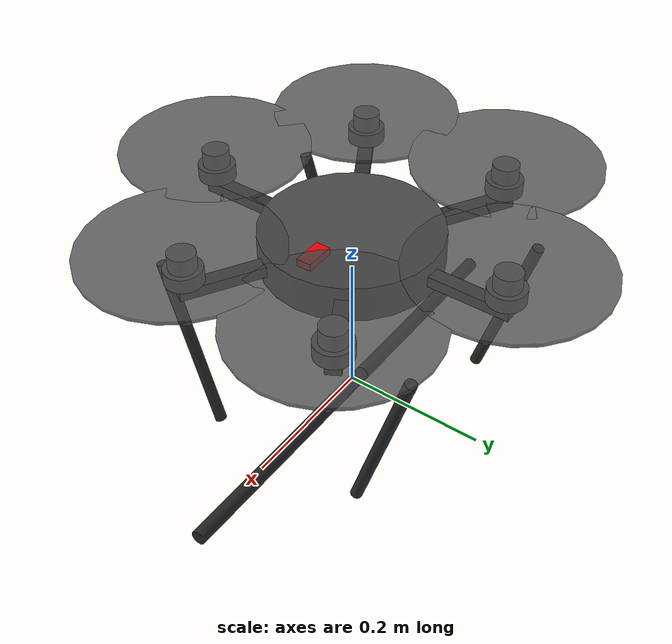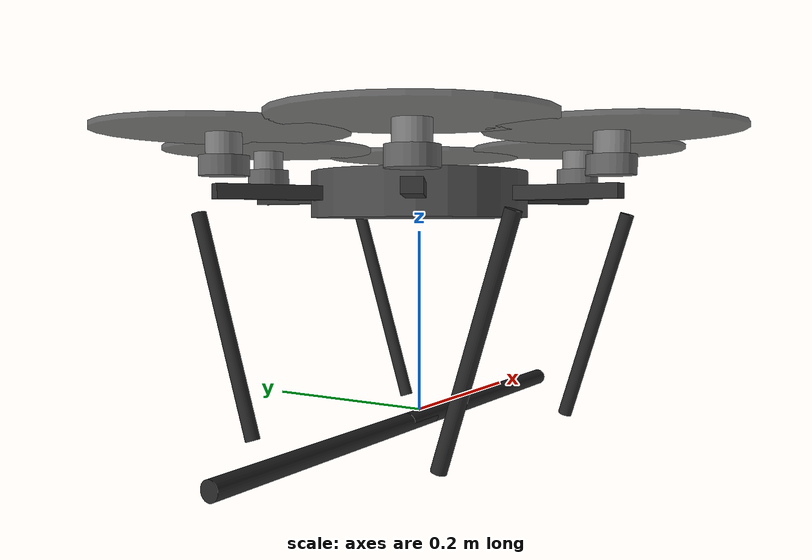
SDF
<?xml version="1.0" encoding="UTF-8"?>
<sdf version='1.9'>
  <model name='h600_base'>
    <pose>0 0 .24 0 0 0</pose>
    <self_collide>false</self_collide>
    <static>false</static>
    <link name="base_link">
      <inertial>
        <mass>2.5</mass>
        <inertia>
          <ixx>0.035</ixx>
          <ixy>0</ixy>
          <ixz>0</ixz>
          <iyy>0.035</iyy>
          <iyz>0</iyz>
          <izz>0.06</izz>
        </inertia>
      </inertial>
      <gravity>true</gravity>
      <velocity_decay/>
      <!-- Central body - hexagonal frame representation -->
      <visual name="base_link_visual">
        <pose>0 0 0 0 0 0</pose>
        <geometry>
          <cylinder>
            <radius>0.12</radius>
            <length>0.05</length>
          </cylinder>
        </geometry>
        <material>
          <ambient>0.2 0.2 0.2 1</ambient>
          <diffuse>0.3 0.3 0.3 1</diffuse>
        </material>
      </visual>
      <!-- Arms - 6 arms at 60 degree intervals -->
      <!-- Arm 0: Front right (30 deg) -->
      <visual name="arm_0">
        <pose>0.095 -0.055 0 0 0 -0.5236</pose>
        <geometry>
          <box>
            <size>0.24 0.02 0.015</size>
          </box>
        </geometry>
        <material>
          <ambient>0.1 0.1 0.1 1</ambient>
          <diffuse>0.2 0.2 0.2 1</diffuse>
        </material>
      </visual>
      <!-- Arm 1: Rear left (150 deg) -->
      <visual name="arm_1">
        <pose>-0.095 0.055 0 0 0 -0.5236</pose>
        <geometry>
          <box>
            <size>0.24 0.02 0.015</size>
          </box>
        </geometry>
        <material>
          <ambient>0.1 0.1 0.1 1</ambient>
          <diffuse>0.2 0.2 0.2 1</diffuse>
        </material>
      </visual>
      <!-- Arm 2: Front left (150 deg mirror) -->
      <visual name="arm_2">
        <pose>0.095 0.055 0 0 0 0.5236</pose>
        <geometry>
          <box>
            <size>0.24 0.02 0.015</size>
          </box>
        </geometry>
        <material>
          <ambient>0.1 0.1 0.1 1</ambient>
          <diffuse>0.2 0.2 0.2 1</diffuse>
        </material>
      </visual>
      <!-- Arm 3: Rear right (-150 deg) -->
      <visual name="arm_3">
        <pose>-0.095 -0.055 0 0 0 0.5236</pose>
        <geometry>
          <box>
            <size>0.24 0.02 0.015</size>
          </box>
        </geometry>
        <material>
          <ambient>0.1 0.1 0.1 1</ambient>
          <diffuse>0.2 0.2 0.2 1</diffuse>
        </material>
      </visual>
      <!-- Arm 4: Right (90 deg) -->
      <visual name="arm_4">
        <pose>0 -0.11 0 0 0 1.5708</pose>
        <geometry>
          <box>
            <size>0.24 0.02 0.015</size>
          </box>
        </geometry>
        <material>
          <ambient>0.1 0.1 0.1 1</ambient>
          <diffuse>0.2 0.2 0.2 1</diffuse>
        </material>
      </visual>
      <!-- Arm 5: Left (-90 deg) -->
      <visual name="arm_5">
        <pose>0 0.11 0 0 0 1.5708</pose>
        <geometry>
          <box>
            <size>0.24 0.02 0.015</size>
          </box>
        </geometry>
        <material>
          <ambient>0.1 0.1 0.1 1</ambient>
          <diffuse>0.2 0.2 0.2 1</diffuse>
        </material>
      </visual>
      <!-- Motor bases -->
      <visual name="motor_base_0">
        <pose>0.19 -0.11 0.025 0 0 0</pose>
        <geometry>
          <cylinder>
            <radius>0.025</radius>
            <length>0.02</length>
          </cylinder>
        </geometry>
        <material>
          <ambient>0.3 0.3 0.3 1</ambient>
          <diffuse>0.4 0.4 0.4 1</diffuse>
        </material>
      </visual>
      <visual name="motor_base_1">
        <pose>-0.19 0.11 0.025 0 0 0</pose>
        <geometry>
          <cylinder>
            <radius>0.025</radius>
            <length>0.02</length>
          </cylinder>
        </geometry>
        <material>
          <ambient>0.3 0.3 0.3 1</ambient>
          <diffuse>0.4 0.4 0.4 1</diffuse>
        </material>
      </visual>
      <visual name="motor_base_2">
        <pose>0.19 0.11 0.025 0 0 0</pose>
        <geometry>
          <cylinder>
            <radius>0.025</radius>
            <length>0.02</length>
          </cylinder>
        </geometry>
        <material>
          <ambient>0.3 0.3 0.3 1</ambient>
          <diffuse>0.4 0.4 0.4 1</diffuse>
        </material>
      </visual>
      <visual name="motor_base_3">
        <pose>-0.19 -0.11 0.025 0 0 0</pose>
        <geometry>
          <cylinder>
            <radius>0.025</radius>
            <length>0.02</length>
          </cylinder>
        </geometry>
        <material>
          <ambient>0.3 0.3 0.3 1</ambient>
          <diffuse>0.4 0.4 0.4 1</diffuse>
        </material>
      </visual>
      <visual name="motor_base_4">
        <pose>0 -0.22 0.025 0 0 0</pose>
        <geometry>
          <cylinder>
            <radius>0.025</radius>
            <length>0.02</length>
          </cylinder>
        </geometry>
        <material>
          <ambient>0.3 0.3 0.3 1</ambient>
          <diffuse>0.4 0.4 0.4 1</diffuse>
        </material>
      </visual>
      <visual name="motor_base_5">
        <pose>0 0.22 0.025 0 0 0</pose>
        <geometry>
          <cylinder>
            <radius>0.025</radius>
            <length>0.02</length>
          </cylinder>
        </geometry>
        <material>
          <ambient>0.3 0.3 0.3 1</ambient>
          <diffuse>0.4 0.4 0.4 1</diffuse>
        </material>
      </visual>
      <!-- Front direction indicator (red) -->
      <visual name="front_indicator">
        <pose>0.08 0 0.03 0 0 0</pose>
        <geometry>
          <box>
            <size>0.04 0.02 0.01</size>
          </box>
        </geometry>
        <material>
          <ambient>1 0 0 1</ambient>
          <diffuse>1 0 0 1</diffuse>
        </material>
      </visual>
      <!-- Landing gear legs - wider stance -->
      <visual name="landing_leg_1">
        <pose>0.15 -0.15 -0.14 0.3 0 0</pose>
        <geometry>
          <cylinder>
            <radius>0.008</radius>
            <length>0.25</length>
          </cylinder>
        </geometry>
        <material>
          <ambient>0.1 0.1 0.1 1</ambient>
          <diffuse>0.15 0.15 0.15 1</diffuse>
        </material>
      </visual>
      <visual name="landing_leg_2">
        <pose>0.15 0.15 -0.14 -0.3 0 0</pose>
        <geometry>
          <cylinder>
            <radius>0.008</radius>
            <length>0.25</length>
          </cylinder>
        </geometry>
        <material>
          <ambient>0.1 0.1 0.1 1</ambient>
          <diffuse>0.15 0.15 0.15 1</diffuse>
        </material>
      </visual>
      <visual name="landing_leg_3">
        <pose>-0.15 -0.15 -0.14 0.3 0 0</pose>
        <geometry>
          <cylinder>
            <radius>0.008</radius>
            <length>0.25</length>
          </cylinder>
        </geometry>
        <material>
          <ambient>0.1 0.1 0.1 1</ambient>
          <diffuse>0.15 0.15 0.15 1</diffuse>
        </material>
      </visual>
      <visual name="landing_leg_4">
        <pose>-0.15 0.15 -0.14 -0.3 0 0</pose>
        <geometry>
          <cylinder>
            <radius>0.008</radius>
            <length>0.25</length>
          </cylinder>
        </geometry>
        <material>
          <ambient>0.1 0.1 0.1 1</ambient>
          <diffuse>0.15 0.15 0.15 1</diffuse>
        </material>
      </visual>
      <!-- Landing skids - wider spread -->
      <visual name="landing_skid_front">
        <pose>0.15 0 -0.25 0 1.5708 0</pose>
        <geometry>
          <cylinder>
            <radius>0.01</radius>
            <length>0.35</length>
          </cylinder>
        </geometry>
        <material>
          <ambient>0.1 0.1 0.1 1</ambient>
          <diffuse>0.15 0.15 0.15 1</diffuse>
        </material>
      </visual>
      <visual name="landing_skid_rear">
        <pose>-0.15 0 -0.25 0 1.5708 0</pose>
        <geometry>
          <cylinder>
            <radius>0.01</radius>
            <length>0.35</length>
          </cylinder>
        </geometry>
        <material>
          <ambient>0.1 0.1 0.1 1</ambient>
          <diffuse>0.15 0.15 0.15 1</diffuse>
        </material>
      </visual>
      <!-- Collision geometry -->
      <collision name="base_link_collision">
        <pose>0 0 0 0 0 0</pose>
        <geometry>
          <cylinder>
            <radius>0.25</radius>
            <length>0.05</length>
          </cylinder>
        </geometry>
        <surface>
          <contact>
            <ode>
              <min_depth>0.001</min_depth>
              <max_vel>0</max_vel>
            </ode>
          </contact>
          <friction>
            <ode/>
          </friction>
        </surface>
      </collision>
      <!-- Landing leg collisions - 4 corner contact points (skid collisions removed to prevent interpenetration) -->
      <collision name="landing_leg_collision_1">
        <pose>0.15 -0.15 -0.14 0.3 0 0</pose>
        <geometry>
          <cylinder>
            <radius>0.01</radius>
            <length>0.25</length>
          </cylinder>
        </geometry>
        <surface>
          <contact>
            <ode>
              <min_depth>0.001</min_depth>
              <max_vel>0</max_vel>
            </ode>
          </contact>
          <friction>
            <ode/>
          </friction>
        </surface>
      </collision>
      <collision name="landing_leg_collision_2">
        <pose>0.15 0.15 -0.14 -0.3 0 0</pose>
        <geometry>
          <cylinder>
            <radius>0.01</radius>
            <length>0.25</length>
          </cylinder>
        </geometry>
        <surface>
          <contact>
            <ode>
              <min_depth>0.001</min_depth>
              <max_vel>0</max_vel>
            </ode>
          </contact>
          <friction>
            <ode/>
          </friction>
        </surface>
      </collision>
      <collision name="landing_leg_collision_3">
        <pose>-0.15 -0.15 -0.14 0.3 0 0</pose>
        <geometry>
          <cylinder>
            <radius>0.01</radius>
            <length>0.25</length>
          </cylinder>
        </geometry>
        <surface>
          <contact>
            <ode>
              <min_depth>0.001</min_depth>
              <max_vel>0</max_vel>
            </ode>
          </contact>
          <friction>
            <ode/>
          </friction>
        </surface>
      </collision>
      <collision name="landing_leg_collision_4">
        <pose>-0.15 0.15 -0.14 -0.3 0 0</pose>
        <geometry>
          <cylinder>
            <radius>0.01</radius>
            <length>0.25</length>
          </cylinder>
        </geometry>
        <surface>
          <contact>
            <ode>
              <min_depth>0.001</min_depth>
              <max_vel>0</max_vel>
            </ode>
          </contact>
          <friction>
            <ode/>
          </friction>
        </surface>
      </collision>
      <!-- Sensors -->
      <sensor name="air_pressure_sensor" type="air_pressure">
        <always_on>1</always_on>
        <update_rate>50</update_rate>
        <air_pressure>
          <pressure>
            <noise type="gaussian">
              <mean>0</mean>
              <stddev>3</stddev>
            </noise>
          </pressure>
        </air_pressure>
      </sensor>
      <sensor name="magnetometer_sensor" type="magnetometer">
        <always_on>1</always_on>
        <update_rate>100</update_rate>
        <magnetometer>
          <x>
            <noise type="gaussian">
              <stddev>0.0001</stddev>
            </noise>
          </x>
          <y>
            <noise type="gaussian">
              <stddev>0.0001</stddev>
            </noise>
          </y>
          <z>
            <noise type="gaussian">
              <stddev>0.0001</stddev>
            </noise>
          </z>
        </magnetometer>
      </sensor>
      <sensor name="imu_sensor" type="imu">
        <always_on>1</always_on>
        <update_rate>250</update_rate>
        <imu>
          <angular_velocity>
            <x>
              <noise type="gaussian">
                <mean>0.0</mean>
                <stddev>0.0008726646</stddev>
              </noise>
            </x>
            <y>
              <noise type="gaussian">
                <mean>0.0</mean>
                <stddev>0.0008726646</stddev>
              </noise>
            </y>
            <z>
              <noise type="gaussian">
                <mean>0.0</mean>
                <stddev>0.0008726646</stddev>
              </noise>
            </z>
          </angular_velocity>
          <linear_acceleration>
            <x>
              <noise type="gaussian">
                <mean>0.0</mean>
                <stddev>0.00637</stddev>
              </noise>
            </x>
            <y>
              <noise type="gaussian">
                <mean>0.0</mean>
                <stddev>0.00637</stddev>
              </noise>
            </y>
            <z>
              <noise type="gaussian">
                <mean>0.0</mean>
                <stddev>0.00686</stddev>
              </noise>
            </z>
          </linear_acceleration>
        </imu>
      </sensor>
      <sensor name="navsat_sensor" type="navsat">
        <always_on>1</always_on>
        <update_rate>30</update_rate>
      </sensor>
    </link>

    <!-- Rotor 0: Front right - CCW -->
    <link name="rotor_0">
      <gravity>true</gravity>
      <self_collide>false</self_collide>
      <velocity_decay/>
      <pose>0.19 -0.11 0.06 0 0 0</pose>
      <inertial>
          <mass>0.016076923076923075</mass>
          <inertia>
            <ixx>3.8464910483993325e-07</ixx>
            <ixy>0</ixy>
            <ixz>0</ixz>
            <iyy>2.6115851691700804e-05</iyy>
            <iyz>0</iyz>
            <izz>2.649858234714004e-05</izz>
          </inertia>
        </inertial>
      <visual name="rotor_0_visual">
        <pose>0 0 0 0 0 0</pose>
        <geometry>
          <cylinder>
            <radius>0.127</radius>
            <length>0.005</length>
          </cylinder>
        </geometry>
        <material>
          <ambient>0.2 0.2 0.2 0.8</ambient>
          <diffuse>0.3 0.3 0.3 0.8</diffuse>
        </material>
      </visual>
      <visual name="rotor_0_motor_bell">
        <pose>0 0 -0.015 0 0 0</pose>
        <geometry>
          <cylinder>
            <radius>0.018</radius>
            <length>0.025</length>
          </cylinder>
        </geometry>
        <material>
          <ambient>0.4 0.4 0.4 1</ambient>
          <diffuse>0.5 0.5 0.5 1</diffuse>
        </material>
      </visual>
      <collision name="rotor_0_collision">
        <pose>0 0 0 0 0 0</pose>
        <geometry>
          <cylinder>
            <radius>0.127</radius>
            <length>0.005</length>
          </cylinder>
        </geometry>
      </collision>
    </link>
    <joint name="rotor_0_joint" type="revolute">
      <parent>base_link</parent>
      <child>rotor_0</child>
      <axis>
        <xyz>0 0 1</xyz>
        <limit>
          <lower>-1e+16</lower>
          <upper>1e+16</upper>
        </limit>
        <dynamics>
          <spring_reference>0</spring_reference>
          <spring_stiffness>0</spring_stiffness>
        </dynamics>
      </axis>
    </joint>

    <!-- Rotor 1: Rear left - CCW -->
    <link name="rotor_1">
      <gravity>true</gravity>
      <self_collide>false</self_collide>
      <velocity_decay/>
      <pose>-0.19 0.11 0.06 0 0 0</pose>
      <inertial>
          <mass>0.016076923076923075</mass>
          <inertia>
            <ixx>3.8464910483993325e-07</ixx>
            <ixy>0</ixy>
            <ixz>0</ixz>
            <iyy>2.6115851691700804e-05</iyy>
            <iyz>0</iyz>
            <izz>2.649858234714004e-05</izz>
          </inertia>
        </inertial>
      <visual name="rotor_1_visual">
        <pose>0 0 0 0 0 0</pose>
        <geometry>
          <cylinder>
            <radius>0.127</radius>
            <length>0.005</length>
          </cylinder>
        </geometry>
        <material>
          <ambient>0.2 0.2 0.2 0.8</ambient>
          <diffuse>0.3 0.3 0.3 0.8</diffuse>
        </material>
      </visual>
      <visual name="rotor_1_motor_bell">
        <pose>0 0 -0.015 0 0 0</pose>
        <geometry>
          <cylinder>
            <radius>0.018</radius>
            <length>0.025</length>
          </cylinder>
        </geometry>
        <material>
          <ambient>0.4 0.4 0.4 1</ambient>
          <diffuse>0.5 0.5 0.5 1</diffuse>
        </material>
      </visual>
      <collision name="rotor_1_collision">
        <pose>0 0 0 0 0 0</pose>
        <geometry>
          <cylinder>
            <radius>0.127</radius>
            <length>0.005</length>
          </cylinder>
        </geometry>
      </collision>
    </link>
    <joint name="rotor_1_joint" type="revolute">
      <parent>base_link</parent>
      <child>rotor_1</child>
      <axis>
        <xyz>0 0 1</xyz>
        <limit>
          <lower>-1e+16</lower>
          <upper>1e+16</upper>
        </limit>
        <dynamics>
          <spring_reference>0</spring_reference>
          <spring_stiffness>0</spring_stiffness>
        </dynamics>
      </axis>
    </joint>

    <!-- Rotor 2: Front left - CW -->
    <link name="rotor_2">
      <gravity>true</gravity>
      <self_collide>false</self_collide>
      <velocity_decay/>
      <pose>0.19 0.11 0.06 0 0 0</pose>
      <inertial>
          <mass>0.016076923076923075</mass>
          <inertia>
            <ixx>3.8464910483993325e-07</ixx>
            <ixy>0</ixy>
            <ixz>0</ixz>
            <iyy>2.6115851691700804e-05</iyy>
            <iyz>0</iyz>
            <izz>2.649858234714004e-05</izz>
          </inertia>
        </inertial>
      <visual name="rotor_2_visual">
        <pose>0 0 0 0 0 0</pose>
        <geometry>
          <cylinder>
            <radius>0.127</radius>
            <length>0.005</length>
          </cylinder>
        </geometry>
        <material>
          <ambient>0.2 0.2 0.2 0.8</ambient>
          <diffuse>0.3 0.3 0.3 0.8</diffuse>
        </material>
      </visual>
      <visual name="rotor_2_motor_bell">
        <pose>0 0 -0.015 0 0 0</pose>
        <geometry>
          <cylinder>
            <radius>0.018</radius>
            <length>0.025</length>
          </cylinder>
        </geometry>
        <material>
          <ambient>0.4 0.4 0.4 1</ambient>
          <diffuse>0.5 0.5 0.5 1</diffuse>
        </material>
      </visual>
      <collision name="rotor_2_collision">
        <pose>0 0 0 0 0 0</pose>
        <geometry>
          <cylinder>
            <radius>0.127</radius>
            <length>0.005</length>
          </cylinder>
        </geometry>
      </collision>
    </link>
    <joint name="rotor_2_joint" type="revolute">
      <parent>base_link</parent>
      <child>rotor_2</child>
      <axis>
        <xyz>0 0 1</xyz>
        <limit>
          <lower>-1e+16</lower>
          <upper>1e+16</upper>
        </limit>
        <dynamics>
          <spring_reference>0</spring_reference>
          <spring_stiffness>0</spring_stiffness>
        </dynamics>
      </axis>
    </joint>

    <!-- Rotor 3: Rear right - CW -->
    <link name="rotor_3">
      <gravity>true</gravity>
      <self_collide>false</self_collide>
      <velocity_decay/>
      <pose>-0.19 -0.11 0.06 0 0 0</pose>
      <inertial>
          <mass>0.016076923076923075</mass>
          <inertia>
            <ixx>3.8464910483993325e-07</ixx>
            <ixy>0</ixy>
            <ixz>0</ixz>
            <iyy>2.6115851691700804e-05</iyy>
            <iyz>0</iyz>
            <izz>2.649858234714004e-05</izz>
          </inertia>
        </inertial>
      <visual name="rotor_3_visual">
        <pose>0 0 0 0 0 0</pose>
        <geometry>
          <cylinder>
            <radius>0.127</radius>
            <length>0.005</length>
          </cylinder>
        </geometry>
        <material>
          <ambient>0.2 0.2 0.2 0.8</ambient>
          <diffuse>0.3 0.3 0.3 0.8</diffuse>
        </material>
      </visual>
      <visual name="rotor_3_motor_bell">
        <pose>0 0 -0.015 0 0 0</pose>
        <geometry>
          <cylinder>
            <radius>0.018</radius>
            <length>0.025</length>
          </cylinder>
        </geometry>
        <material>
          <ambient>0.4 0.4 0.4 1</ambient>
          <diffuse>0.5 0.5 0.5 1</diffuse>
        </material>
      </visual>
      <collision name="rotor_3_collision">
        <pose>0 0 0 0 0 0</pose>
        <geometry>
          <cylinder>
            <radius>0.127</radius>
            <length>0.005</length>
          </cylinder>
        </geometry>
      </collision>
    </link>
    <joint name="rotor_3_joint" type="revolute">
      <parent>base_link</parent>
      <child>rotor_3</child>
      <axis>
        <xyz>0 0 1</xyz>
        <limit>
          <lower>-1e+16</lower>
          <upper>1e+16</upper>
        </limit>
        <dynamics>
          <spring_reference>0</spring_reference>
          <spring_stiffness>0</spring_stiffness>
        </dynamics>
      </axis>
    </joint>

    <!-- Rotor 4: Right - CCW -->
    <link name="rotor_4">
      <gravity>true</gravity>
      <self_collide>false</self_collide>
      <velocity_decay/>
      <pose>0 -0.22 0.06 0 0 0</pose>
      <inertial>
          <mass>0.016076923076923075</mass>
          <inertia>
            <ixx>3.8464910483993325e-07</ixx>
            <ixy>0</ixy>
            <ixz>0</ixz>
            <iyy>2.6115851691700804e-05</iyy>
            <iyz>0</iyz>
            <izz>2.649858234714004e-05</izz>
          </inertia>
        </inertial>
      <visual name="rotor_4_visual">
        <pose>0 0 0 0 0 0</pose>
        <geometry>
          <cylinder>
            <radius>0.127</radius>
            <length>0.005</length>
          </cylinder>
        </geometry>
        <material>
          <ambient>0.2 0.2 0.2 0.8</ambient>
          <diffuse>0.3 0.3 0.3 0.8</diffuse>
        </material>
      </visual>
      <visual name="rotor_4_motor_bell">
        <pose>0 0 -0.015 0 0 0</pose>
        <geometry>
          <cylinder>
            <radius>0.018</radius>
            <length>0.025</length>
          </cylinder>
        </geometry>
        <material>
          <ambient>0.4 0.4 0.4 1</ambient>
          <diffuse>0.5 0.5 0.5 1</diffuse>
        </material>
      </visual>
      <collision name="rotor_4_collision">
        <pose>0 0 0 0 0 0</pose>
        <geometry>
          <cylinder>
            <radius>0.127</radius>
            <length>0.005</length>
          </cylinder>
        </geometry>
      </collision>
    </link>
    <joint name="rotor_4_joint" type="revolute">
      <parent>base_link</parent>
      <child>rotor_4</child>
      <axis>
        <xyz>0 0 1</xyz>
        <limit>
          <lower>-1e+16</lower>
          <upper>1e+16</upper>
        </limit>
        <dynamics>
          <spring_reference>0</spring_reference>
          <spring_stiffness>0</spring_stiffness>
        </dynamics>
      </axis>
    </joint>

    <!-- Rotor 5: Left - CW -->
    <link name="rotor_5">
      <gravity>true</gravity>
      <self_collide>false</self_collide>
      <velocity_decay/>
      <pose>0 0.22 0.06 0 0 0</pose>
      <inertial>
          <mass>0.016076923076923075</mass>
          <inertia>
            <ixx>3.8464910483993325e-07</ixx>
            <ixy>0</ixy>
            <ixz>0</ixz>
            <iyy>2.6115851691700804e-05</iyy>
            <iyz>0</iyz>
            <izz>2.649858234714004e-05</izz>
          </inertia>
        </inertial>
      <visual name="rotor_5_visual">
        <pose>0 0 0 0 0 0</pose>
        <geometry>
          <cylinder>
            <radius>0.127</radius>
            <length>0.005</length>
          </cylinder>
        </geometry>
        <material>
          <ambient>0.2 0.2 0.2 0.8</ambient>
          <diffuse>0.3 0.3 0.3 0.8</diffuse>
        </material>
      </visual>
      <visual name="rotor_5_motor_bell">
        <pose>0 0 -0.015 0 0 0</pose>
        <geometry>
          <cylinder>
            <radius>0.018</radius>
            <length>0.025</length>
          </cylinder>
        </geometry>
        <material>
          <ambient>0.4 0.4 0.4 1</ambient>
          <diffuse>0.5 0.5 0.5 1</diffuse>
        </material>
      </visual>
      <collision name="rotor_5_collision">
        <pose>0 0 0 0 0 0</pose>
        <geometry>
          <cylinder>
            <radius>0.127</radius>
            <length>0.005</length>
          </cylinder>
        </geometry>
      </collision>
    </link>
    <joint name="rotor_5_joint" type="revolute">
      <parent>base_link</parent>
      <child>rotor_5</child>
      <axis>
        <xyz>0 0 1</xyz>
        <limit>
          <lower>-1e+16</lower>
          <upper>1e+16</upper>
        </limit>
        <dynamics>
          <spring_reference>0</spring_reference>
          <spring_stiffness>0</spring_stiffness>
        </dynamics>
      </axis>
    </joint>
  </model>
</sdf>
